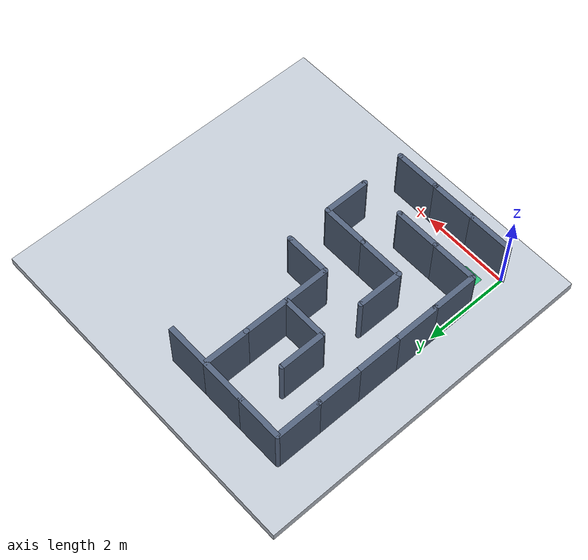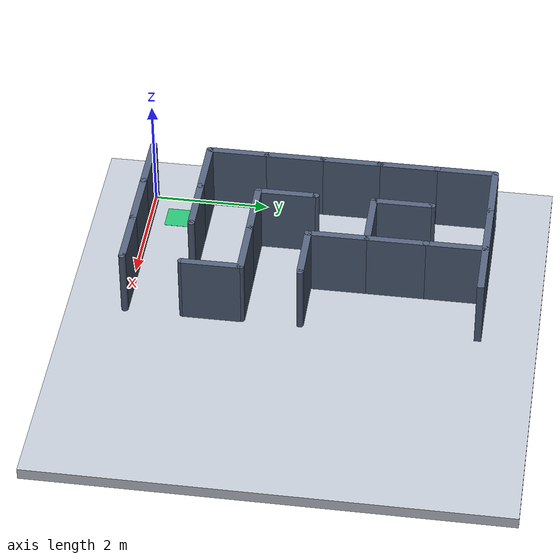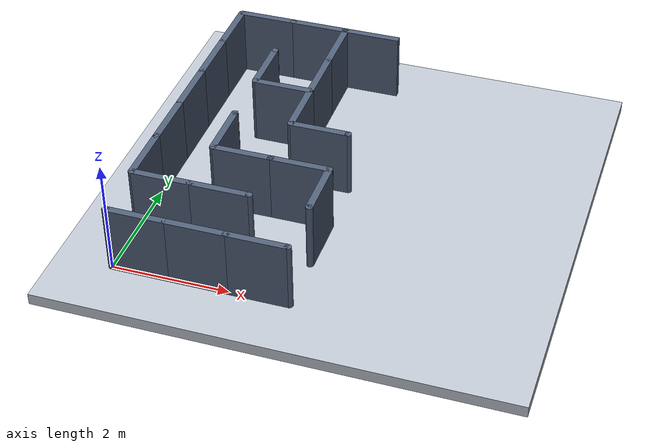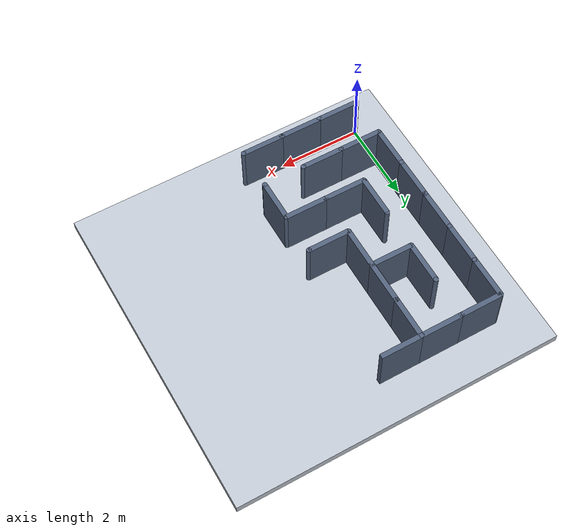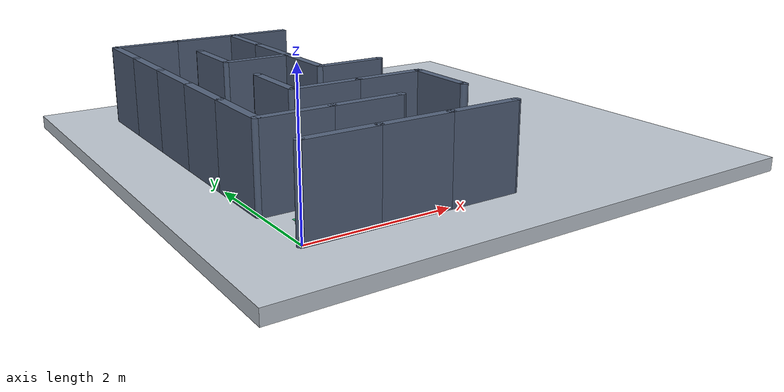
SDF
<sdf version="1.6">
 <world name="maze_6x6">
  <model name="ground_plane">
   <static>true</static>
   <pose>3.000000 3.000000 -0.100000 0.000000 0.000000 0.000000</pose>
   <link name="link">
    <collision name="collision">
     <geometry><box><size>8.000000 8.000000 0.200000</size></box></geometry>
     <surface><friction><ode><mu>1.0</mu><mu2>1.0</mu2></ode></friction></surface>
    </collision>
    <visual name="visual">
     <geometry><box><size>8.000000 8.000000 0.200000</size></box></geometry>
     <material><ambient>0.75 0.78 0.82 1</ambient><diffuse>0.75 0.78 0.82 1</diffuse></material>
    </visual>
   </link>
  </model>
  <model name="wall_000">
   <static>true</static>
   <pose>0.500000 0.000000 0.600000 0.000000 0.000000 0.000000</pose>
   <link name="link">
    <collision name="collision">
     <geometry><box><size>1.000000 0.120000 1.200000</size></box></geometry>
    </collision>
    <visual name="visual">
     <geometry><box><size>1.000000 0.120000 1.200000</size></box></geometry>
     <material><ambient>0.32 0.38 0.48 1</ambient><diffuse>0.32 0.38 0.48 1</diffuse></material>
    </visual>
   </link>
  </model>
  <model name="wall_001">
   <static>true</static>
   <pose>0.000000 1.500000 0.600000 0.000000 0.000000 0.000000</pose>
   <link name="link">
    <collision name="collision">
     <geometry><box><size>0.120000 1.000000 1.200000</size></box></geometry>
    </collision>
    <visual name="visual">
     <geometry><box><size>0.120000 1.000000 1.200000</size></box></geometry>
     <material><ambient>0.32 0.38 0.48 1</ambient><diffuse>0.32 0.38 0.48 1</diffuse></material>
    </visual>
   </link>
  </model>
  <model name="wall_002">
   <static>true</static>
   <pose>0.500000 1.000000 0.600000 0.000000 0.000000 0.000000</pose>
   <link name="link">
    <collision name="collision">
     <geometry><box><size>1.000000 0.120000 1.200000</size></box></geometry>
    </collision>
    <visual name="visual">
     <geometry><box><size>1.000000 0.120000 1.200000</size></box></geometry>
     <material><ambient>0.32 0.38 0.48 1</ambient><diffuse>0.32 0.38 0.48 1</diffuse></material>
    </visual>
   </link>
  </model>
  <model name="wall_003">
   <static>true</static>
   <pose>0.000000 2.500000 0.600000 0.000000 0.000000 0.000000</pose>
   <link name="link">
    <collision name="collision">
     <geometry><box><size>0.120000 1.000000 1.200000</size></box></geometry>
    </collision>
    <visual name="visual">
     <geometry><box><size>0.120000 1.000000 1.200000</size></box></geometry>
     <material><ambient>0.32 0.38 0.48 1</ambient><diffuse>0.32 0.38 0.48 1</diffuse></material>
    </visual>
   </link>
  </model>
  <model name="wall_004">
   <static>true</static>
   <pose>0.000000 3.500000 0.600000 0.000000 0.000000 0.000000</pose>
   <link name="link">
    <collision name="collision">
     <geometry><box><size>0.120000 1.000000 1.200000</size></box></geometry>
    </collision>
    <visual name="visual">
     <geometry><box><size>0.120000 1.000000 1.200000</size></box></geometry>
     <material><ambient>0.32 0.38 0.48 1</ambient><diffuse>0.32 0.38 0.48 1</diffuse></material>
    </visual>
   </link>
  </model>
  <model name="wall_005">
   <static>true</static>
   <pose>0.000000 4.500000 0.600000 0.000000 0.000000 0.000000</pose>
   <link name="link">
    <collision name="collision">
     <geometry><box><size>0.120000 1.000000 1.200000</size></box></geometry>
    </collision>
    <visual name="visual">
     <geometry><box><size>0.120000 1.000000 1.200000</size></box></geometry>
     <material><ambient>0.32 0.38 0.48 1</ambient><diffuse>0.32 0.38 0.48 1</diffuse></material>
    </visual>
   </link>
  </model>
  <model name="wall_006">
   <static>true</static>
   <pose>0.000000 5.500000 0.600000 0.000000 0.000000 0.000000</pose>
   <link name="link">
    <collision name="collision">
     <geometry><box><size>0.120000 1.000000 1.200000</size></box></geometry>
    </collision>
    <visual name="visual">
     <geometry><box><size>0.120000 1.000000 1.200000</size></box></geometry>
     <material><ambient>0.32 0.38 0.48 1</ambient><diffuse>0.32 0.38 0.48 1</diffuse></material>
    </visual>
   </link>
  </model>
  <model name="wall_007">
   <static>true</static>
   <pose>0.500000 6.000000 0.600000 0.000000 0.000000 0.000000</pose>
   <link name="link">
    <collision name="collision">
     <geometry><box><size>1.000000 0.120000 1.200000</size></box></geometry>
    </collision>
    <visual name="visual">
     <geometry><box><size>1.000000 0.120000 1.200000</size></box></geometry>
     <material><ambient>0.32 0.38 0.48 1</ambient><diffuse>0.32 0.38 0.48 1</diffuse></material>
    </visual>
   </link>
  </model>
  <model name="wall_008">
   <static>true</static>
   <pose>1.500000 0.000000 0.600000 0.000000 0.000000 0.000000</pose>
   <link name="link">
    <collision name="collision">
     <geometry><box><size>1.000000 0.120000 1.200000</size></box></geometry>
    </collision>
    <visual name="visual">
     <geometry><box><size>1.000000 0.120000 1.200000</size></box></geometry>
     <material><ambient>0.32 0.38 0.48 1</ambient><diffuse>0.32 0.38 0.48 1</diffuse></material>
    </visual>
   </link>
  </model>
  <model name="wall_009">
   <static>true</static>
   <pose>1.500000 1.000000 0.600000 0.000000 0.000000 0.000000</pose>
   <link name="link">
    <collision name="collision">
     <geometry><box><size>1.000000 0.120000 1.200000</size></box></geometry>
    </collision>
    <visual name="visual">
     <geometry><box><size>1.000000 0.120000 1.200000</size></box></geometry>
     <material><ambient>0.32 0.38 0.48 1</ambient><diffuse>0.32 0.38 0.48 1</diffuse></material>
    </visual>
   </link>
  </model>
  <model name="wall_010">
   <static>true</static>
   <pose>1.000000 2.500000 0.600000 0.000000 0.000000 0.000000</pose>
   <link name="link">
    <collision name="collision">
     <geometry><box><size>0.120000 1.000000 1.200000</size></box></geometry>
    </collision>
    <visual name="visual">
     <geometry><box><size>0.120000 1.000000 1.200000</size></box></geometry>
     <material><ambient>0.32 0.38 0.48 1</ambient><diffuse>0.32 0.38 0.48 1</diffuse></material>
    </visual>
   </link>
  </model>
  <model name="wall_011">
   <static>true</static>
   <pose>1.500000 2.000000 0.600000 0.000000 0.000000 0.000000</pose>
   <link name="link">
    <collision name="collision">
     <geometry><box><size>1.000000 0.120000 1.200000</size></box></geometry>
    </collision>
    <visual name="visual">
     <geometry><box><size>1.000000 0.120000 1.200000</size></box></geometry>
     <material><ambient>0.32 0.38 0.48 1</ambient><diffuse>0.32 0.38 0.48 1</diffuse></material>
    </visual>
   </link>
  </model>
  <model name="wall_012">
   <static>true</static>
   <pose>1.000000 4.500000 0.600000 0.000000 0.000000 0.000000</pose>
   <link name="link">
    <collision name="collision">
     <geometry><box><size>0.120000 1.000000 1.200000</size></box></geometry>
    </collision>
    <visual name="visual">
     <geometry><box><size>0.120000 1.000000 1.200000</size></box></geometry>
     <material><ambient>0.32 0.38 0.48 1</ambient><diffuse>0.32 0.38 0.48 1</diffuse></material>
    </visual>
   </link>
  </model>
  <model name="wall_013">
   <static>true</static>
   <pose>1.500000 4.000000 0.600000 0.000000 0.000000 0.000000</pose>
   <link name="link">
    <collision name="collision">
     <geometry><box><size>1.000000 0.120000 1.200000</size></box></geometry>
    </collision>
    <visual name="visual">
     <geometry><box><size>1.000000 0.120000 1.200000</size></box></geometry>
     <material><ambient>0.32 0.38 0.48 1</ambient><diffuse>0.32 0.38 0.48 1</diffuse></material>
    </visual>
   </link>
  </model>
  <model name="wall_014">
   <static>true</static>
   <pose>1.500000 6.000000 0.600000 0.000000 0.000000 0.000000</pose>
   <link name="link">
    <collision name="collision">
     <geometry><box><size>1.000000 0.120000 1.200000</size></box></geometry>
    </collision>
    <visual name="visual">
     <geometry><box><size>1.000000 0.120000 1.200000</size></box></geometry>
     <material><ambient>0.32 0.38 0.48 1</ambient><diffuse>0.32 0.38 0.48 1</diffuse></material>
    </visual>
   </link>
  </model>
  <model name="wall_015">
   <static>true</static>
   <pose>2.500000 0.000000 0.600000 0.000000 0.000000 0.000000</pose>
   <link name="link">
    <collision name="collision">
     <geometry><box><size>1.000000 0.120000 1.200000</size></box></geometry>
    </collision>
    <visual name="visual">
     <geometry><box><size>1.000000 0.120000 1.200000</size></box></geometry>
     <material><ambient>0.32 0.38 0.48 1</ambient><diffuse>0.32 0.38 0.48 1</diffuse></material>
    </visual>
   </link>
  </model>
  <model name="wall_016">
   <static>true</static>
   <pose>2.500000 2.000000 0.600000 0.000000 0.000000 0.000000</pose>
   <link name="link">
    <collision name="collision">
     <geometry><box><size>1.000000 0.120000 1.200000</size></box></geometry>
    </collision>
    <visual name="visual">
     <geometry><box><size>1.000000 0.120000 1.200000</size></box></geometry>
     <material><ambient>0.32 0.38 0.48 1</ambient><diffuse>0.32 0.38 0.48 1</diffuse></material>
    </visual>
   </link>
  </model>
  <model name="wall_017">
   <static>true</static>
   <pose>2.000000 3.500000 0.600000 0.000000 0.000000 0.000000</pose>
   <link name="link">
    <collision name="collision">
     <geometry><box><size>0.120000 1.000000 1.200000</size></box></geometry>
    </collision>
    <visual name="visual">
     <geometry><box><size>0.120000 1.000000 1.200000</size></box></geometry>
     <material><ambient>0.32 0.38 0.48 1</ambient><diffuse>0.32 0.38 0.48 1</diffuse></material>
    </visual>
   </link>
  </model>
  <model name="wall_018">
   <static>true</static>
   <pose>2.500000 3.000000 0.600000 0.000000 0.000000 0.000000</pose>
   <link name="link">
    <collision name="collision">
     <geometry><box><size>1.000000 0.120000 1.200000</size></box></geometry>
    </collision>
    <visual name="visual">
     <geometry><box><size>1.000000 0.120000 1.200000</size></box></geometry>
     <material><ambient>0.32 0.38 0.48 1</ambient><diffuse>0.32 0.38 0.48 1</diffuse></material>
    </visual>
   </link>
  </model>
  <model name="wall_019">
   <static>true</static>
   <pose>2.000000 4.500000 0.600000 0.000000 0.000000 0.000000</pose>
   <link name="link">
    <collision name="collision">
     <geometry><box><size>0.120000 1.000000 1.200000</size></box></geometry>
    </collision>
    <visual name="visual">
     <geometry><box><size>0.120000 1.000000 1.200000</size></box></geometry>
     <material><ambient>0.32 0.38 0.48 1</ambient><diffuse>0.32 0.38 0.48 1</diffuse></material>
    </visual>
   </link>
  </model>
  <model name="wall_020">
   <static>true</static>
   <pose>2.000000 5.500000 0.600000 0.000000 0.000000 0.000000</pose>
   <link name="link">
    <collision name="collision">
     <geometry><box><size>0.120000 1.000000 1.200000</size></box></geometry>
    </collision>
    <visual name="visual">
     <geometry><box><size>0.120000 1.000000 1.200000</size></box></geometry>
     <material><ambient>0.32 0.38 0.48 1</ambient><diffuse>0.32 0.38 0.48 1</diffuse></material>
    </visual>
   </link>
  </model>
  <model name="wall_021">
   <static>true</static>
   <pose>2.500000 6.000000 0.600000 0.000000 0.000000 0.000000</pose>
   <link name="link">
    <collision name="collision">
     <geometry><box><size>1.000000 0.120000 1.200000</size></box></geometry>
    </collision>
    <visual name="visual">
     <geometry><box><size>1.000000 0.120000 1.200000</size></box></geometry>
     <material><ambient>0.32 0.38 0.48 1</ambient><diffuse>0.32 0.38 0.48 1</diffuse></material>
    </visual>
   </link>
  </model>
  <model name="wall_023">
   <static>true</static>
   <pose>3.000000 1.500000 0.600000 0.000000 0.000000 0.000000</pose>
   <link name="link">
    <collision name="collision">
     <geometry><box><size>0.120000 1.000000 1.200000</size></box></geometry>
    </collision>
    <visual name="visual">
     <geometry><box><size>0.120000 1.000000 1.200000</size></box></geometry>
     <material><ambient>0.32 0.38 0.48 1</ambient><diffuse>0.32 0.38 0.48 1</diffuse></material>
    </visual>
   </link>
  </model>
  <model name="pillar_000">
   <static>true</static>
   <pose>0.000000 0.000000 0.600000 0.000000 0.000000 0.000000</pose>
   <link name="link">
    <collision name="collision">
     <geometry><cylinder><radius>0.060000</radius><length>1.200000</length></cylinder></geometry>
    </collision>
    <visual name="visual">
     <geometry><cylinder><radius>0.060000</radius><length>1.200000</length></cylinder></geometry>
     <material><ambient>0.32 0.38 0.48 1</ambient><diffuse>0.32 0.38 0.48 1</diffuse></material>
    </visual>
   </link>
  </model>
  <model name="pillar_001">
   <static>true</static>
   <pose>0.000000 1.000000 0.600000 0.000000 0.000000 0.000000</pose>
   <link name="link">
    <collision name="collision">
     <geometry><cylinder><radius>0.060000</radius><length>1.200000</length></cylinder></geometry>
    </collision>
    <visual name="visual">
     <geometry><cylinder><radius>0.060000</radius><length>1.200000</length></cylinder></geometry>
     <material><ambient>0.32 0.38 0.48 1</ambient><diffuse>0.32 0.38 0.48 1</diffuse></material>
    </visual>
   </link>
  </model>
  <model name="pillar_002">
   <static>true</static>
   <pose>0.000000 2.000000 0.600000 0.000000 0.000000 0.000000</pose>
   <link name="link">
    <collision name="collision">
     <geometry><cylinder><radius>0.060000</radius><length>1.200000</length></cylinder></geometry>
    </collision>
    <visual name="visual">
     <geometry><cylinder><radius>0.060000</radius><length>1.200000</length></cylinder></geometry>
     <material><ambient>0.32 0.38 0.48 1</ambient><diffuse>0.32 0.38 0.48 1</diffuse></material>
    </visual>
   </link>
  </model>
  <model name="pillar_003">
   <static>true</static>
   <pose>0.000000 3.000000 0.600000 0.000000 0.000000 0.000000</pose>
   <link name="link">
    <collision name="collision">
     <geometry><cylinder><radius>0.060000</radius><length>1.200000</length></cylinder></geometry>
    </collision>
    <visual name="visual">
     <geometry><cylinder><radius>0.060000</radius><length>1.200000</length></cylinder></geometry>
     <material><ambient>0.32 0.38 0.48 1</ambient><diffuse>0.32 0.38 0.48 1</diffuse></material>
    </visual>
   </link>
  </model>
  <model name="pillar_004">
   <static>true</static>
   <pose>0.000000 4.000000 0.600000 0.000000 0.000000 0.000000</pose>
   <link name="link">
    <collision name="collision">
     <geometry><cylinder><radius>0.060000</radius><length>1.200000</length></cylinder></geometry>
    </collision>
    <visual name="visual">
     <geometry><cylinder><radius>0.060000</radius><length>1.200000</length></cylinder></geometry>
     <material><ambient>0.32 0.38 0.48 1</ambient><diffuse>0.32 0.38 0.48 1</diffuse></material>
    </visual>
   </link>
  </model>
  <model name="pillar_005">
   <static>true</static>
   <pose>0.000000 5.000000 0.600000 0.000000 0.000000 0.000000</pose>
   <link name="link">
    <collision name="collision">
     <geometry><cylinder><radius>0.060000</radius><length>1.200000</length></cylinder></geometry>
    </collision>
    <visual name="visual">
     <geometry><cylinder><radius>0.060000</radius><length>1.200000</length></cylinder></geometry>
     <material><ambient>0.32 0.38 0.48 1</ambient><diffuse>0.32 0.38 0.48 1</diffuse></material>
    </visual>
   </link>
  </model>
  <model name="pillar_006">
   <static>true</static>
   <pose>0.000000 6.000000 0.600000 0.000000 0.000000 0.000000</pose>
   <link name="link">
    <collision name="collision">
     <geometry><cylinder><radius>0.060000</radius><length>1.200000</length></cylinder></geometry>
    </collision>
    <visual name="visual">
     <geometry><cylinder><radius>0.060000</radius><length>1.200000</length></cylinder></geometry>
     <material><ambient>0.32 0.38 0.48 1</ambient><diffuse>0.32 0.38 0.48 1</diffuse></material>
    </visual>
   </link>
  </model>
  <model name="pillar_007">
   <static>true</static>
   <pose>1.000000 0.000000 0.600000 0.000000 0.000000 0.000000</pose>
   <link name="link">
    <collision name="collision">
     <geometry><cylinder><radius>0.060000</radius><length>1.200000</length></cylinder></geometry>
    </collision>
    <visual name="visual">
     <geometry><cylinder><radius>0.060000</radius><length>1.200000</length></cylinder></geometry>
     <material><ambient>0.32 0.38 0.48 1</ambient><diffuse>0.32 0.38 0.48 1</diffuse></material>
    </visual>
   </link>
  </model>
  <model name="pillar_008">
   <static>true</static>
   <pose>1.000000 1.000000 0.600000 0.000000 0.000000 0.000000</pose>
   <link name="link">
    <collision name="collision">
     <geometry><cylinder><radius>0.060000</radius><length>1.200000</length></cylinder></geometry>
    </collision>
    <visual name="visual">
     <geometry><cylinder><radius>0.060000</radius><length>1.200000</length></cylinder></geometry>
     <material><ambient>0.32 0.38 0.48 1</ambient><diffuse>0.32 0.38 0.48 1</diffuse></material>
    </visual>
   </link>
  </model>
  <model name="pillar_009">
   <static>true</static>
   <pose>1.000000 2.000000 0.600000 0.000000 0.000000 0.000000</pose>
   <link name="link">
    <collision name="collision">
     <geometry><cylinder><radius>0.060000</radius><length>1.200000</length></cylinder></geometry>
    </collision>
    <visual name="visual">
     <geometry><cylinder><radius>0.060000</radius><length>1.200000</length></cylinder></geometry>
     <material><ambient>0.32 0.38 0.48 1</ambient><diffuse>0.32 0.38 0.48 1</diffuse></material>
    </visual>
   </link>
  </model>
  <model name="pillar_010">
   <static>true</static>
   <pose>1.000000 3.000000 0.600000 0.000000 0.000000 0.000000</pose>
   <link name="link">
    <collision name="collision">
     <geometry><cylinder><radius>0.060000</radius><length>1.200000</length></cylinder></geometry>
    </collision>
    <visual name="visual">
     <geometry><cylinder><radius>0.060000</radius><length>1.200000</length></cylinder></geometry>
     <material><ambient>0.32 0.38 0.48 1</ambient><diffuse>0.32 0.38 0.48 1</diffuse></material>
    </visual>
   </link>
  </model>
  <model name="pillar_011">
   <static>true</static>
   <pose>1.000000 4.000000 0.600000 0.000000 0.000000 0.000000</pose>
   <link name="link">
    <collision name="collision">
     <geometry><cylinder><radius>0.060000</radius><length>1.200000</length></cylinder></geometry>
    </collision>
    <visual name="visual">
     <geometry><cylinder><radius>0.060000</radius><length>1.200000</length></cylinder></geometry>
     <material><ambient>0.32 0.38 0.48 1</ambient><diffuse>0.32 0.38 0.48 1</diffuse></material>
    </visual>
   </link>
  </model>
  <model name="pillar_012">
   <static>true</static>
   <pose>1.000000 5.000000 0.600000 0.000000 0.000000 0.000000</pose>
   <link name="link">
    <collision name="collision">
     <geometry><cylinder><radius>0.060000</radius><length>1.200000</length></cylinder></geometry>
    </collision>
    <visual name="visual">
     <geometry><cylinder><radius>0.060000</radius><length>1.200000</length></cylinder></geometry>
     <material><ambient>0.32 0.38 0.48 1</ambient><diffuse>0.32 0.38 0.48 1</diffuse></material>
    </visual>
   </link>
  </model>
  <model name="pillar_013">
   <static>true</static>
   <pose>1.000000 6.000000 0.600000 0.000000 0.000000 0.000000</pose>
   <link name="link">
    <collision name="collision">
     <geometry><cylinder><radius>0.060000</radius><length>1.200000</length></cylinder></geometry>
    </collision>
    <visual name="visual">
     <geometry><cylinder><radius>0.060000</radius><length>1.200000</length></cylinder></geometry>
     <material><ambient>0.32 0.38 0.48 1</ambient><diffuse>0.32 0.38 0.48 1</diffuse></material>
    </visual>
   </link>
  </model>
  <model name="pillar_014">
   <static>true</static>
   <pose>2.000000 0.000000 0.600000 0.000000 0.000000 0.000000</pose>
   <link name="link">
    <collision name="collision">
     <geometry><cylinder><radius>0.060000</radius><length>1.200000</length></cylinder></geometry>
    </collision>
    <visual name="visual">
     <geometry><cylinder><radius>0.060000</radius><length>1.200000</length></cylinder></geometry>
     <material><ambient>0.32 0.38 0.48 1</ambient><diffuse>0.32 0.38 0.48 1</diffuse></material>
    </visual>
   </link>
  </model>
  <model name="pillar_015">
   <static>true</static>
   <pose>2.000000 1.000000 0.600000 0.000000 0.000000 0.000000</pose>
   <link name="link">
    <collision name="collision">
     <geometry><cylinder><radius>0.060000</radius><length>1.200000</length></cylinder></geometry>
    </collision>
    <visual name="visual">
     <geometry><cylinder><radius>0.060000</radius><length>1.200000</length></cylinder></geometry>
     <material><ambient>0.32 0.38 0.48 1</ambient><diffuse>0.32 0.38 0.48 1</diffuse></material>
    </visual>
   </link>
  </model>
  <model name="pillar_016">
   <static>true</static>
   <pose>2.000000 2.000000 0.600000 0.000000 0.000000 0.000000</pose>
   <link name="link">
    <collision name="collision">
     <geometry><cylinder><radius>0.060000</radius><length>1.200000</length></cylinder></geometry>
    </collision>
    <visual name="visual">
     <geometry><cylinder><radius>0.060000</radius><length>1.200000</length></cylinder></geometry>
     <material><ambient>0.32 0.38 0.48 1</ambient><diffuse>0.32 0.38 0.48 1</diffuse></material>
    </visual>
   </link>
  </model>
  <model name="pillar_017">
   <static>true</static>
   <pose>2.000000 3.000000 0.600000 0.000000 0.000000 0.000000</pose>
   <link name="link">
    <collision name="collision">
     <geometry><cylinder><radius>0.060000</radius><length>1.200000</length></cylinder></geometry>
    </collision>
    <visual name="visual">
     <geometry><cylinder><radius>0.060000</radius><length>1.200000</length></cylinder></geometry>
     <material><ambient>0.32 0.38 0.48 1</ambient><diffuse>0.32 0.38 0.48 1</diffuse></material>
    </visual>
   </link>
  </model>
  <model name="pillar_018">
   <static>true</static>
   <pose>2.000000 4.000000 0.600000 0.000000 0.000000 0.000000</pose>
   <link name="link">
    <collision name="collision">
     <geometry><cylinder><radius>0.060000</radius><length>1.200000</length></cylinder></geometry>
    </collision>
    <visual name="visual">
     <geometry><cylinder><radius>0.060000</radius><length>1.200000</length></cylinder></geometry>
     <material><ambient>0.32 0.38 0.48 1</ambient><diffuse>0.32 0.38 0.48 1</diffuse></material>
    </visual>
   </link>
  </model>
  <model name="pillar_019">
   <static>true</static>
   <pose>2.000000 5.000000 0.600000 0.000000 0.000000 0.000000</pose>
   <link name="link">
    <collision name="collision">
     <geometry><cylinder><radius>0.060000</radius><length>1.200000</length></cylinder></geometry>
    </collision>
    <visual name="visual">
     <geometry><cylinder><radius>0.060000</radius><length>1.200000</length></cylinder></geometry>
     <material><ambient>0.32 0.38 0.48 1</ambient><diffuse>0.32 0.38 0.48 1</diffuse></material>
    </visual>
   </link>
  </model>
  <model name="pillar_020">
   <static>true</static>
   <pose>2.000000 6.000000 0.600000 0.000000 0.000000 0.000000</pose>
   <link name="link">
    <collision name="collision">
     <geometry><cylinder><radius>0.060000</radius><length>1.200000</length></cylinder></geometry>
    </collision>
    <visual name="visual">
     <geometry><cylinder><radius>0.060000</radius><length>1.200000</length></cylinder></geometry>
     <material><ambient>0.32 0.38 0.48 1</ambient><diffuse>0.32 0.38 0.48 1</diffuse></material>
    </visual>
   </link>
  </model>
  <model name="pillar_021">
   <static>true</static>
   <pose>3.000000 0.000000 0.600000 0.000000 0.000000 0.000000</pose>
   <link name="link">
    <collision name="collision">
     <geometry><cylinder><radius>0.060000</radius><length>1.200000</length></cylinder></geometry>
    </collision>
    <visual name="visual">
     <geometry><cylinder><radius>0.060000</radius><length>1.200000</length></cylinder></geometry>
     <material><ambient>0.32 0.38 0.48 1</ambient><diffuse>0.32 0.38 0.48 1</diffuse></material>
    </visual>
   </link>
  </model>
  <model name="pillar_022">
   <static>true</static>
   <pose>3.000000 1.000000 0.600000 0.000000 0.000000 0.000000</pose>
   <link name="link">
    <collision name="collision">
     <geometry><cylinder><radius>0.060000</radius><length>1.200000</length></cylinder></geometry>
    </collision>
    <visual name="visual">
     <geometry><cylinder><radius>0.060000</radius><length>1.200000</length></cylinder></geometry>
     <material><ambient>0.32 0.38 0.48 1</ambient><diffuse>0.32 0.38 0.48 1</diffuse></material>
    </visual>
   </link>
  </model>
  <model name="pillar_023">
   <static>true</static>
   <pose>3.000000 2.000000 0.600000 0.000000 0.000000 0.000000</pose>
   <link name="link">
    <collision name="collision">
     <geometry><cylinder><radius>0.060000</radius><length>1.200000</length></cylinder></geometry>
    </collision>
    <visual name="visual">
     <geometry><cylinder><radius>0.060000</radius><length>1.200000</length></cylinder></geometry>
     <material><ambient>0.32 0.38 0.48 1</ambient><diffuse>0.32 0.38 0.48 1</diffuse></material>
    </visual>
   </link>
  </model>
  <model name="pillar_024">
   <static>true</static>
   <pose>3.000000 3.000000 0.600000 0.000000 0.000000 0.000000</pose>
   <link name="link">
    <collision name="collision">
     <geometry><cylinder><radius>0.060000</radius><length>1.200000</length></cylinder></geometry>
    </collision>
    <visual name="visual">
     <geometry><cylinder><radius>0.060000</radius><length>1.200000</length></cylinder></geometry>
     <material><ambient>0.32 0.38 0.48 1</ambient><diffuse>0.32 0.38 0.48 1</diffuse></material>
    </visual>
   </link>
  </model>
  <model name="marker_entry">
   <static>true</static>
   <pose>0.500000 0.500000 0.001000 0.000000 0.000000 0.000000</pose>
   <link name="link">
    <visual name="visual">
     <geometry><box><size>0.450000 0.450000 0.002000</size></box></geometry>
     <material><ambient>0.15 0.75 0.45 1</ambient><diffuse>0.15 0.75 0.45 1</diffuse></material>
    </visual>
   </link>
  </model>
 </world>
</sdf>
